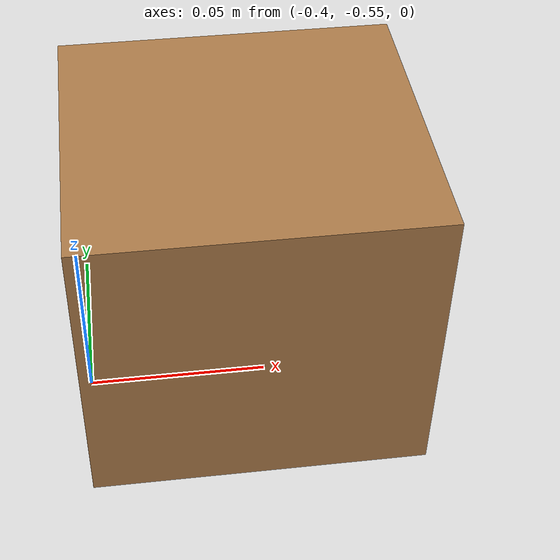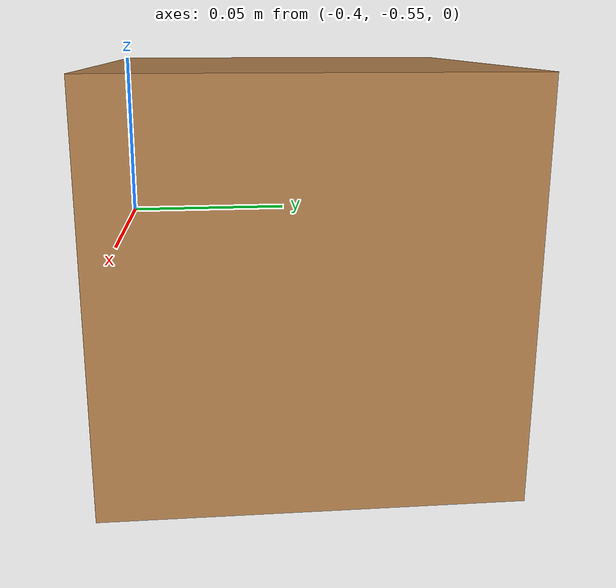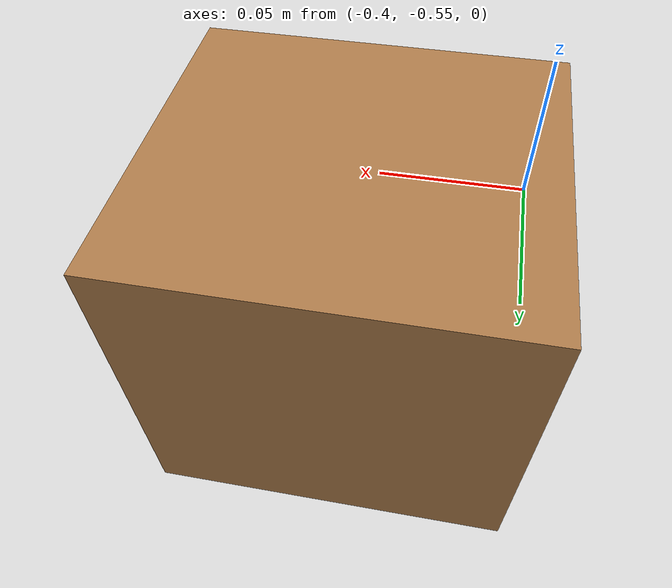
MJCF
<mujoco model="rod">
    <asset>
        <mesh file="../objects/meshes/rod.obj" name="rod_mesh" scale="0.0005 0.005 0.005" />
        <texture type="2d" name="rod_texture"
            file="../textures/dark-wood.png" />
        <material name="rod_material" texture="rod_texture" texrepeat="1 1"
            texuniform="true" />

    </asset>
    <worldbody>
        <body name="box">
            <geom pos="-0.35 -0.5 0" mesh="rod_mesh" type="mesh" material="rod_material"
                density="150" group="0" condim="4" />
        </body>
    </worldbody>
</mujoco>
